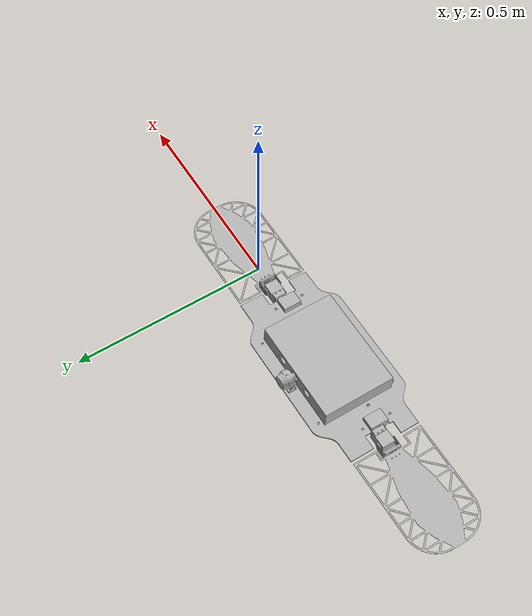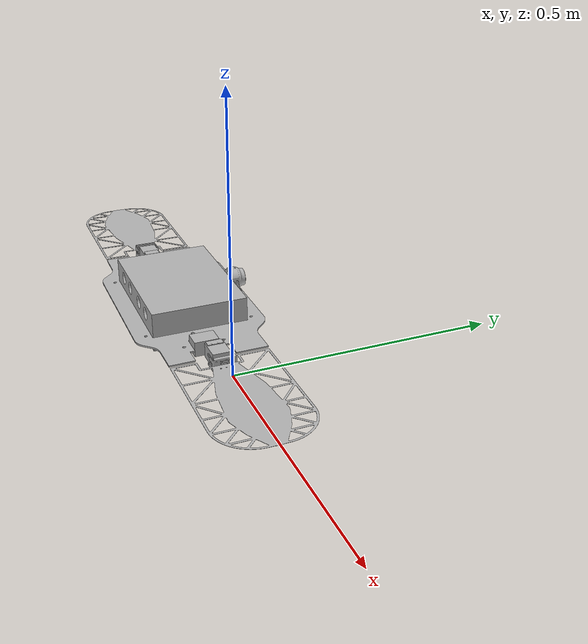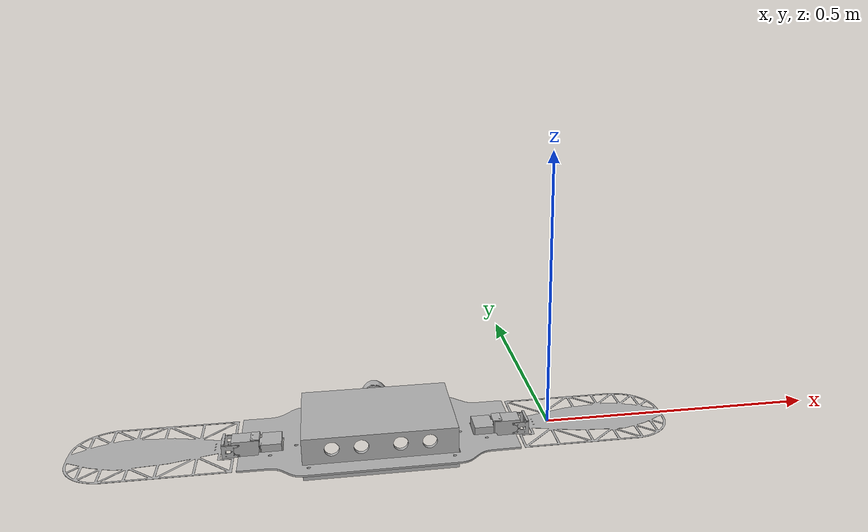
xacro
<?xml version="1.0" ?>
<robot name="prototype" xmlns:xacro="http://www.ros.org/wiki/xacro">

  <!-- Pull in the untouched CAD description (links, joints, ROS1 gazebo tags) -->
  <xacro:include filename="$(find prototype_description)/urdf/prototype.xacro" />

  <!-- ============ Gazebo Harmonic model systems ============ -->
  <gazebo>
    <plugin filename="gz-sim-joint-state-publisher-system"
            name="gz::sim::systems::JointStatePublisher">
    </plugin>

    <plugin filename="gz-sim-joint-position-controller-system"
            name="gz::sim::systems::JointPositionController">
      <joint_name>Revolute 29</joint_name>
      <topic>/prototype/Revolute_29/cmd_pos</topic>
      <p_gain>10.0</p_gain><i_gain>0.1</i_gain><d_gain>1.0</d_gain>
    </plugin>
    <plugin filename="gz-sim-joint-position-controller-system"
            name="gz::sim::systems::JointPositionController">
      <joint_name>Revolute 31</joint_name>
      <topic>/prototype/Revolute_31/cmd_pos</topic>
      <p_gain>10.0</p_gain><i_gain>0.1</i_gain><d_gain>1.0</d_gain>
    </plugin>
    <plugin filename="gz-sim-joint-position-controller-system"
            name="gz::sim::systems::JointPositionController">
      <joint_name>Revolute 33</joint_name>
      <topic>/prototype/Revolute_33/cmd_pos</topic>
      <p_gain>10.0</p_gain><i_gain>0.1</i_gain><d_gain>1.0</d_gain>
    </plugin>
    <plugin filename="gz-sim-joint-position-controller-system"
            name="gz::sim::systems::JointPositionController">
      <joint_name>Revolute 34</joint_name>
      <topic>/prototype/Revolute_34/cmd_pos</topic>
      <p_gain>10.0</p_gain><i_gain>0.1</i_gain><d_gain>1.0</d_gain>
    </plugin>
  </gazebo>

  <!-- ============ IMU sensor (base_link) ============ -->
  <gazebo reference="base_link">
    <sensor name="imu_sensor" type="imu">
      <always_on>1</always_on>
      <update_rate>100</update_rate>
      <topic>imu</topic>
      <gz_frame_id>base_link</gz_frame_id>
    </sensor>
  </gazebo>

  <gazebo reference="stellarhd-wetlink_1">
    <sensor name="camera_sensor" type="camera">
      <always_on>1</always_on>
      <update_rate>30</update_rate>
      <topic>camera</topic>
      <gz_frame_id>stellarhd-wetlink_1</gz_frame_id>
      <pose>0 0 0 0 0 0</pose>
      <camera>
        <horizontal_fov>1.5304</horizontal_fov>
        <image><width>1920</width><height>1080</height><format>R8G8B8</format></image>
        <clip><near>0.05</near><far>100.0</far></clip>
      </camera>
    </sensor>
  </gazebo>

</robot>

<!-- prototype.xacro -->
<robot name="prototype" xmlns:xacro="http://www.ros.org/wiki/xacro">

<xacro:include filename="$(find prototype_description)/urdf/materials.xacro" />
<xacro:include filename="$(find prototype_description)/urdf/prototype.ros2control" />
<xacro:include filename="$(find prototype_description)/urdf/prototype.gazebo" />
<link name="base_link">
  <inertial>
    <origin xyz="-0.30899099029165195 0.0012108888668969147 0.0015750000000000009" rpy="0 0 0"/>
    <mass value="1.2850313556237054"/>
    <inertia ixx="0.009139" iyy="0.030103" izz="0.03924" ixy="-0.0" iyz="0.0" ixz="0.0"/>
  </inertial>
  <visual>
    <origin xyz="0 0 0" rpy="0 0 0"/>
    <geometry>
      <mesh filename="file://$(find prototype_description)/meshes/base_link.stl" scale="0.001 0.001 0.001"/>
    </geometry>
    <material name="silver"/>
  </visual>
  <collision>
    <origin xyz="0 0 0" rpy="0 0 0"/>
    <geometry>
      <mesh filename="file://$(find prototype_description)/meshes/base_link.stl" scale="0.001 0.001 0.001"/>
    </geometry>
  </collision>
</link>

<link name="stellarhd-wetlink_1">
  <inertial>
    <origin xyz="-0.021000020936753683 0.0023021334072860222 2.2846147291338825e-07" rpy="0 0 0"/>
    <mass value="0.37191904393122094"/>
    <inertia ixx="8.4e-05" iyy="7.6e-05" izz="8.4e-05" ixy="-0.0" iyz="0.0" ixz="0.0"/>
  </inertial>
  <visual>
    <origin xyz="0.287891 -0.110458 -0.0294" rpy="0 0 0"/>
    <geometry>
      <mesh filename="file://$(find prototype_description)/meshes/stellarhd-wetlink.stl" scale="0.001 0.001 0.001"/>
    </geometry>
    <material name="silver"/>
  </visual>
  <collision>
    <origin xyz="0.287891 -0.110458 -0.0294" rpy="0 0 0"/>
    <geometry>
      <mesh filename="file://$(find prototype_description)/meshes/stellarhd-wetlink.stl" scale="0.001 0.001 0.001"/>
    </geometry>
  </collision>
</link>

<link name="stellarhd-bracket_1">
  <inertial>
    <origin xyz="-0.014949832549455366 2.837484025519643e-07 0.007794889986392118" rpy="0 0 0"/>
    <mass value="0.028628064173343685"/>
    <inertia ixx="3e-06" iyy="1.2e-05" izz="1.1e-05" ixy="0.0" iyz="0.0" ixz="0.0"/>
  </inertial>
  <visual>
    <origin xyz="0.294041 -0.110458 -0.00315" rpy="0 0 0"/>
    <geometry>
      <mesh filename="file://$(find prototype_description)/meshes/stellarhd-bracket.stl" scale="0.001 0.001 0.001"/>
    </geometry>
    <material name="silver"/>
  </visual>
  <collision>
    <origin xyz="0.294041 -0.110458 -0.00315" rpy="0 0 0"/>
    <geometry>
      <mesh filename="file://$(find prototype_description)/meshes/stellarhd-bracket.stl" scale="0.001 0.001 0.001"/>
    </geometry>
  </collision>
</link>

<link name="left_Aerial_Truss_Structure3_1">
  <inertial>
    <origin xyz="-0.12411757462955986 -0.5809102001753234 0.001575000000006679" rpy="0 0 0"/>
    <mass value="0.08754866154833155"/>
    <inertia ixx="0.000159" iyy="0.00045" izz="0.000609" ixy="0.0" iyz="0.0" ixz="-0.0"/>
  </inertial>
  <visual>
    <origin xyz="0.579463 -0.579463 -0.0" rpy="0 0 0"/>
    <geometry>
      <mesh filename="file://$(find prototype_description)/meshes/left_Aerial_Truss_Structure3.stl" scale="0.001 0.001 0.001"/>
    </geometry>
    <material name="silver"/>
  </visual>
  <collision>
    <origin xyz="0.579463 -0.579463 -0.0" rpy="0 0 0"/>
    <geometry>
      <mesh filename="file://$(find prototype_description)/meshes/left_Aerial_Truss_Structure3.stl" scale="0.001 0.001 0.001"/>
    </geometry>
  </collision>
</link>

<link name="right_Aerial_Truss_Structure3_1">
  <inertial>
    <origin xyz="0.12411757462956012 -0.04039120017532343 -0.0015750000000065818" rpy="0 0 0"/>
    <mass value="0.08754866154833155"/>
    <inertia ixx="0.000159" iyy="0.00045" izz="0.000609" ixy="-0.0" iyz="-0.0" ixz="-0.0"/>
  </inertial>
  <visual>
    <origin xyz="0.039519 -0.038944 -0.00315" rpy="0 0 0"/>
    <geometry>
      <mesh filename="file://$(find prototype_description)/meshes/right_Aerial_Truss_Structure3.stl" scale="0.001 0.001 0.001"/>
    </geometry>
    <material name="silver"/>
  </visual>
  <collision>
    <origin xyz="0.039519 -0.038944 -0.00315" rpy="0 0 0"/>
    <geometry>
      <mesh filename="file://$(find prototype_description)/meshes/right_Aerial_Truss_Structure3.stl" scale="0.001 0.001 0.001"/>
    </geometry>
  </collision>
</link>

<link name="electronics_box_1">
  <inertial>
    <origin xyz="0.13250000000000006 0.00033149078128963275 0.0028288877602833428" rpy="0 0 0"/>
    <mass value="8.109333145299782"/>
    <inertia ixx="0.045437" iyy="0.077245" izz="0.101726" ixy="0.0" iyz="-6.4e-05" ixz="0.0"/>
  </inertial>
  <visual>
    <origin xyz="0.442491 -0.0 -0.001575" rpy="0 0 0"/>
    <geometry>
      <mesh filename="file://$(find prototype_description)/meshes/electronics_box.stl" scale="0.001 0.001 0.001"/>
    </geometry>
    <material name="silver"/>
  </visual>
  <collision>
    <origin xyz="0.442491 -0.0 -0.001575" rpy="0 0 0"/>
    <geometry>
      <mesh filename="file://$(find prototype_description)/meshes/electronics_box.stl" scale="0.001 0.001 0.001"/>
    </geometry>
  </collision>
</link>

<link name="right_roll_servo_1">
  <inertial>
    <origin xyz="0.0004910091311879361 -0.022971963132577967 2.190088388420719e-17" rpy="0 0 0"/>
    <mass value="0.3630867612612132"/>
    <inertia ixx="8.9e-05" iyy="6.2e-05" izz="0.000102" ixy="-2e-06" iyz="-0.0" ixz="-0.0"/>
  </inertial>
  <visual>
    <origin xyz="0.123682 -0.011712 -0.001575" rpy="0 0 0"/>
    <geometry>
      <mesh filename="file://$(find prototype_description)/meshes/right_roll_servo.stl" scale="0.001 0.001 0.001"/>
    </geometry>
    <material name="silver"/>
  </visual>
  <collision>
    <origin xyz="0.123682 -0.011712 -0.001575" rpy="0 0 0"/>
    <geometry>
      <mesh filename="file://$(find prototype_description)/meshes/right_roll_servo.stl" scale="0.001 0.001 0.001"/>
    </geometry>
  </collision>
</link>

<link name="right_pitch_servo_1">
  <inertial>
    <origin xyz="0.023527934247580137 0.0004911122576693884 2.6454533008646308e-17" rpy="0 0 0"/>
    <mass value="0.3630867612612132"/>
    <inertia ixx="6.2e-05" iyy="8.9e-05" izz="0.000102" ixy="-2e-06" iyz="0.0" ixz="0.0"/>
  </inertial>
  <visual>
    <origin xyz="0.101182 0.000788 -0.001575" rpy="0 0 0"/>
    <geometry>
      <mesh filename="file://$(find prototype_description)/meshes/right_pitch_servo.stl" scale="0.001 0.001 0.001"/>
    </geometry>
    <material name="silver"/>
  </visual>
  <collision>
    <origin xyz="0.101182 0.000788 -0.001575" rpy="0 0 0"/>
    <geometry>
      <mesh filename="file://$(find prototype_description)/meshes/right_pitch_servo.stl" scale="0.001 0.001 0.001"/>
    </geometry>
  </collision>
</link>

<link name="right_pitch_FRX430-H105K_1">
  <inertial>
    <origin xyz="0.12251391006422618 0.01573365916397316 0.0059619999999900065" rpy="0 0 0"/>
    <mass value="0.02592343937573193"/>
    <inertia ixx="9e-06" iyy="4e-06" izz="9e-06" ixy="0.0" iyz="-0.0" ixz="0.0"/>
  </inertial>
  <visual>
    <origin xyz="0.168363 0.016213 0.004387" rpy="0 0 0"/>
    <geometry>
      <mesh filename="file://$(find prototype_description)/meshes/right_pitch_FRX430-H105K.stl" scale="0.001 0.001 0.001"/>
    </geometry>
    <material name="silver"/>
  </visual>
  <collision>
    <origin xyz="0.168363 0.016213 0.004387" rpy="0 0 0"/>
    <geometry>
      <mesh filename="file://$(find prototype_description)/meshes/right_pitch_FRX430-H105K.stl" scale="0.001 0.001 0.001"/>
    </geometry>
  </collision>
</link>

<link name="left_pitch_servo_1">
  <inertial>
    <origin xyz="-0.0004910091311878806 -0.02297196313257798 1.7564075194265172e-17" rpy="0 0 0"/>
    <mass value="0.3630867612612132"/>
    <inertia ixx="8.9e-05" iyy="6.2e-05" izz="0.000102" ixy="2e-06" iyz="0.0" ixz="0.0"/>
  </inertial>
  <visual>
    <origin xyz="0.4943 -0.011712 -0.001575" rpy="0 0 0"/>
    <geometry>
      <mesh filename="file://$(find prototype_description)/meshes/left_pitch_servo.stl" scale="0.001 0.001 0.001"/>
    </geometry>
    <material name="silver"/>
  </visual>
  <collision>
    <origin xyz="0.4943 -0.011712 -0.001575" rpy="0 0 0"/>
    <geometry>
      <mesh filename="file://$(find prototype_description)/meshes/left_pitch_servo.stl" scale="0.001 0.001 0.001"/>
    </geometry>
  </collision>
</link>

<link name="left_FRX430-S105K_1">
  <inertial>
    <origin xyz="-0.004369488895370366 3.9431371385309586e-07 1.2841117058570717e-13" rpy="0 0 0"/>
    <mass value="0.01834155822688401"/>
    <inertia ixx="4e-06" iyy="3e-06" izz="2e-06" ixy="0.0" iyz="0.0" ixz="0.0"/>
  </inertial>
  <visual>
    <origin xyz="0.5153 0.000788 -0.001575" rpy="0 0 0"/>
    <geometry>
      <mesh filename="file://$(find prototype_description)/meshes/left_FRX430-S105K.stl" scale="0.001 0.001 0.001"/>
    </geometry>
    <material name="silver"/>
  </visual>
  <collision>
    <origin xyz="0.5153 0.000788 -0.001575" rpy="0 0 0"/>
    <geometry>
      <mesh filename="file://$(find prototype_description)/meshes/left_FRX430-S105K.stl" scale="0.001 0.001 0.001"/>
    </geometry>
  </collision>
</link>

<link name="left_roll_servo_1">
  <inertial>
    <origin xyz="-0.02352793424757993 0.0004911122576693729 1.7564075194265172e-17" rpy="0 0 0"/>
    <mass value="0.3630867612612132"/>
    <inertia ixx="6.2e-05" iyy="8.9e-05" izz="0.000102" ixy="2e-06" iyz="-0.0" ixz="-0.0"/>
  </inertial>
  <visual>
    <origin xyz="0.5168 0.000788 -0.001575" rpy="0 0 0"/>
    <geometry>
      <mesh filename="file://$(find prototype_description)/meshes/left_roll_servo.stl" scale="0.001 0.001 0.001"/>
    </geometry>
    <material name="silver"/>
  </visual>
  <collision>
    <origin xyz="0.5168 0.000788 -0.001575" rpy="0 0 0"/>
    <geometry>
      <mesh filename="file://$(find prototype_description)/meshes/left_roll_servo.stl" scale="0.001 0.001 0.001"/>
    </geometry>
  </collision>
</link>

<link name="left_FRX430-H105K_1">
  <inertial>
    <origin xyz="-0.607132910064226 0.015733659163973172 -0.005961999999989951" rpy="0 0 0"/>
    <mass value="0.02592343937573193"/>
    <inertia ixx="9e-06" iyy="4e-06" izz="9e-06" ixy="-0.0" iyz="0.0" ixz="0.0"/>
  </inertial>
  <visual>
    <origin xyz="-0.034 0.016213 -0.007537" rpy="0 0 0"/>
    <geometry>
      <mesh filename="file://$(find prototype_description)/meshes/left_FRX430-H105K.stl" scale="0.001 0.001 0.001"/>
    </geometry>
    <material name="silver"/>
  </visual>
  <collision>
    <origin xyz="-0.034 0.016213 -0.007537" rpy="0 0 0"/>
    <geometry>
      <mesh filename="file://$(find prototype_description)/meshes/left_FRX430-H105K.stl" scale="0.001 0.001 0.001"/>
    </geometry>
  </collision>
</link>

<link name="right_FRX430-S105K_1">
  <inertial>
    <origin xyz="0.004369488895370449 3.94313713829135e-07 1.2842613257568747e-13" rpy="0 0 0"/>
    <mass value="0.01834155822688401"/>
    <inertia ixx="4e-06" iyy="3e-06" izz="2e-06" ixy="0.0" iyz="-0.0" ixz="-0.0"/>
  </inertial>
  <visual>
    <origin xyz="0.102682 0.000788 -0.001575" rpy="0 0 0"/>
    <geometry>
      <mesh filename="file://$(find prototype_description)/meshes/right_FRX430-S105K.stl" scale="0.001 0.001 0.001"/>
    </geometry>
    <material name="silver"/>
  </visual>
  <collision>
    <origin xyz="0.102682 0.000788 -0.001575" rpy="0 0 0"/>
    <geometry>
      <mesh filename="file://$(find prototype_description)/meshes/right_FRX430-S105K.stl" scale="0.001 0.001 0.001"/>
    </geometry>
  </collision>
</link>

<joint name="Rigid 9" type="fixed">
  <origin xyz="0.00615 0.0 0.02625" rpy="0 0 0"/>
  <parent link="stellarhd-bracket_1"/>
  <child link="stellarhd-wetlink_1"/>
</joint>

<joint name="Rigid 10" type="fixed">
  <origin xyz="-0.294041 0.110458 0.00315" rpy="0 0 0"/>
  <parent link="base_link"/>
  <child link="stellarhd-bracket_1"/>
</joint>

<joint name="Rigid 17" type="fixed">
  <origin xyz="-0.613463 0.595676 -0.007537" rpy="0 0 0"/>
  <parent link="left_FRX430-H105K_1"/>
  <child link="left_Aerial_Truss_Structure3_1"/>
</joint>

<joint name="Rigid 22" type="fixed">
  <origin xyz="0.128844 0.055157 0.007537" rpy="0 0 0"/>
  <parent link="right_pitch_FRX430-H105K_1"/>
  <child link="right_Aerial_Truss_Structure3_1"/>
</joint>

<joint name="Rigid 23" type="fixed">
  <origin xyz="-0.442491 0.0 0.001575" rpy="0 0 0"/>
  <parent link="base_link"/>
  <child link="electronics_box_1"/>
</joint>

<joint name="Rigid 26" type="fixed">
  <origin xyz="-0.123682 0.011712 0.001575" rpy="0 0 0"/>
  <parent link="base_link"/>
  <child link="right_roll_servo_1"/>
</joint>

<joint name="Rigid 28" type="fixed">
  <origin xyz="0.0015 0.0 0.0" rpy="0 0 0"/>
  <parent link="right_FRX430-S105K_1"/>
  <child link="right_pitch_servo_1"/>
</joint>

<joint name="Revolute 29" type="continuous">
  <origin xyz="-0.067181 -0.015425 -0.005962" rpy="0 0 0"/>
  <parent link="right_pitch_servo_1"/>
  <child link="right_pitch_FRX430-H105K_1"/>
  <axis xyz="0.0 1.0 0.0"/>
</joint>

<joint name="Rigid 30" type="fixed">
  <origin xyz="-0.4943 0.011712 0.001575" rpy="0 0 0"/>
  <parent link="base_link"/>
  <child link="left_pitch_servo_1"/>
</joint>

<joint name="Revolute 31" type="continuous">
  <origin xyz="-0.021 -0.0125 0.0" rpy="0 0 0"/>
  <parent link="left_pitch_servo_1"/>
  <child link="left_FRX430-S105K_1"/>
  <axis xyz="-1.0 0.0 0.0"/>
</joint>

<joint name="Rigid 32" type="fixed">
  <origin xyz="-0.0015 0.0 0.0" rpy="0 0 0"/>
  <parent link="left_FRX430-S105K_1"/>
  <child link="left_roll_servo_1"/>
</joint>

<joint name="Revolute 33" type="continuous">
  <origin xyz="0.5508 -0.015425 0.005962" rpy="0 0 0"/>
  <parent link="left_roll_servo_1"/>
  <child link="left_FRX430-H105K_1"/>
  <axis xyz="0.0 1.0 -0.0"/>
</joint>

<joint name="Revolute 34" type="continuous">
  <origin xyz="0.021 -0.0125 0.0" rpy="0 0 0"/>
  <parent link="right_roll_servo_1"/>
  <child link="right_FRX430-S105K_1"/>
  <axis xyz="1.0 0.0 -0.0"/>
</joint>

</robot>

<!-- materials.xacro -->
<robot name="prototype" xmlns:xacro="http://www.ros.org/wiki/xacro" >

<material name="silver">
  <color rgba="0.700 0.700 0.700 1.000"/>
</material>

</robot>

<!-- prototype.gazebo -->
<robot name="prototype" xmlns:xacro="http://www.ros.org/wiki/xacro" >

<xacro:property name="body_color" value="Gazebo/Silver" />

<gazebo reference="base_link">
  <material>${body_color}</material>
  <mu1>0.2</mu1>
  <mu2>0.2</mu2>
  <self_collide>true</self_collide>
  <gravity>true</gravity>
</gazebo>

<gazebo reference="stellarhd-wetlink_1">
  <material>${body_color}</material>
  <mu1>0.2</mu1>
  <mu2>0.2</mu2>
  <self_collide>true</self_collide>
</gazebo>

<gazebo reference="stellarhd-bracket_1">
  <material>${body_color}</material>
  <mu1>0.2</mu1>
  <mu2>0.2</mu2>
  <self_collide>true</self_collide>
</gazebo>

<gazebo reference="left_Aerial_Truss_Structure3_1">
  <material>${body_color}</material>
  <mu1>0.2</mu1>
  <mu2>0.2</mu2>
  <self_collide>true</self_collide>
</gazebo>

<gazebo reference="right_Aerial_Truss_Structure3_1">
  <material>${body_color}</material>
  <mu1>0.2</mu1>
  <mu2>0.2</mu2>
  <self_collide>true</self_collide>
</gazebo>

<gazebo reference="electronics_box_1">
  <material>${body_color}</material>
  <mu1>0.2</mu1>
  <mu2>0.2</mu2>
  <self_collide>true</self_collide>
</gazebo>

<gazebo reference="right_roll_servo_1">
  <material>${body_color}</material>
  <mu1>0.2</mu1>
  <mu2>0.2</mu2>
  <self_collide>true</self_collide>
</gazebo>

<gazebo reference="right_pitch_servo_1">
  <material>${body_color}</material>
  <mu1>0.2</mu1>
  <mu2>0.2</mu2>
  <self_collide>true</self_collide>
</gazebo>

<gazebo reference="right_pitch_FRX430-H105K_1">
  <material>${body_color}</material>
  <mu1>0.2</mu1>
  <mu2>0.2</mu2>
  <self_collide>true</self_collide>
</gazebo>

<gazebo reference="left_pitch_servo_1">
  <material>${body_color}</material>
  <mu1>0.2</mu1>
  <mu2>0.2</mu2>
  <self_collide>true</self_collide>
</gazebo>

<gazebo reference="left_FRX430-S105K_1">
  <material>${body_color}</material>
  <mu1>0.2</mu1>
  <mu2>0.2</mu2>
  <self_collide>true</self_collide>
</gazebo>

<gazebo reference="left_roll_servo_1">
  <material>${body_color}</material>
  <mu1>0.2</mu1>
  <mu2>0.2</mu2>
  <self_collide>true</self_collide>
</gazebo>

<gazebo reference="left_FRX430-H105K_1">
  <material>${body_color}</material>
  <mu1>0.2</mu1>
  <mu2>0.2</mu2>
  <self_collide>true</self_collide>
</gazebo>

<gazebo reference="right_FRX430-S105K_1">
  <material>${body_color}</material>
  <mu1>0.2</mu1>
  <mu2>0.2</mu2>
  <self_collide>true</self_collide>
</gazebo>

</robot>
